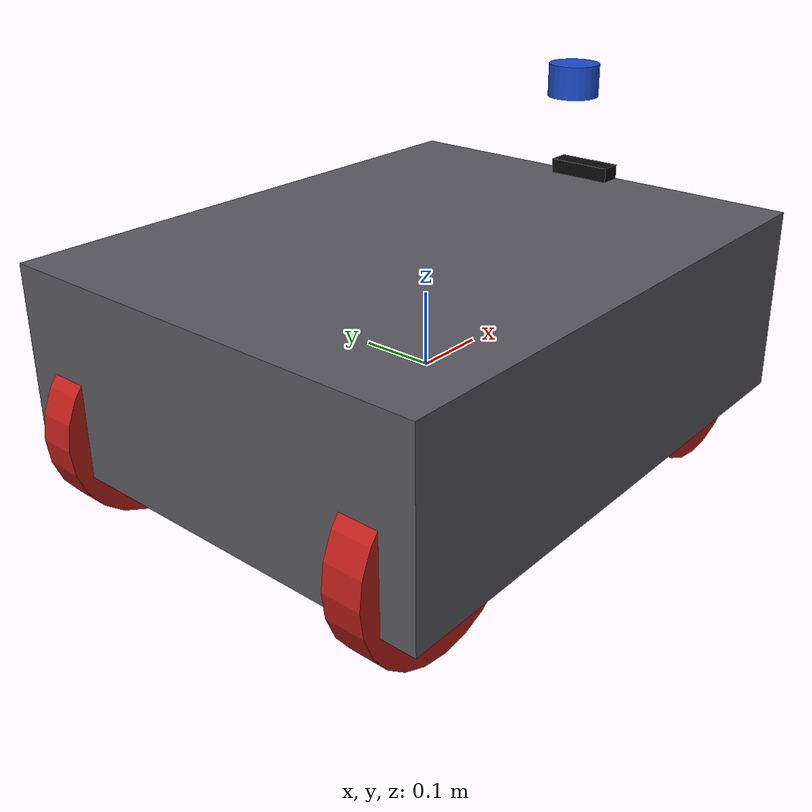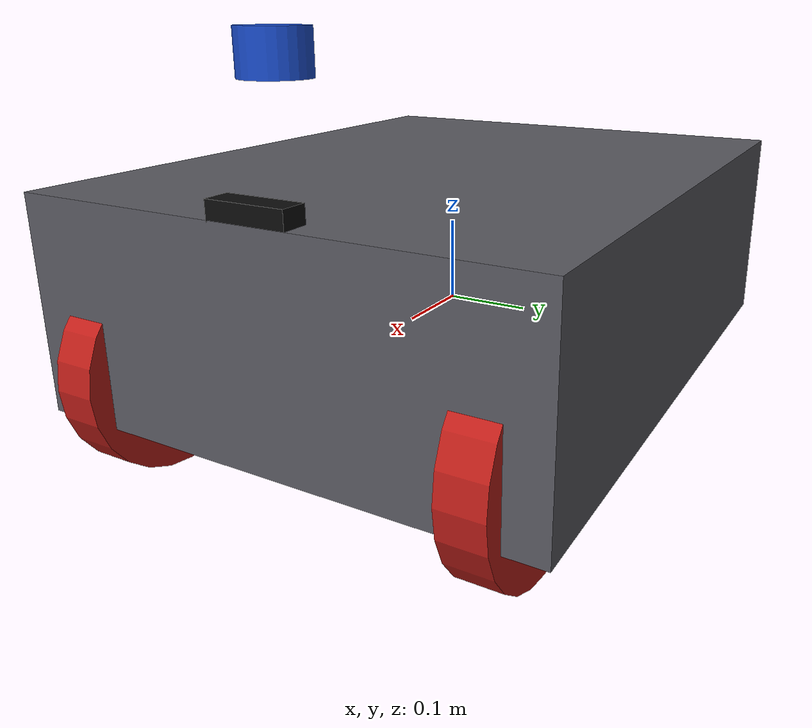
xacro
<?xml version="1.0"?>
<!--
  URDF-модель робота-курьера НТЦ АО «АВТОВАЗ».
  Шасси 4WIS/4WID: 4 независимых поворотно-тяговых модуля.
  Система координат: base_link — в центре рамы на высоте осей колес.
-->
<robot name="rus_slam" xmlns:xacro="http://www.ros.org/wiki/xacro">

  <!-- Габариты и массы -->
  <xacro:property name="body_length" value="0.75"/>
  <xacro:property name="body_width"  value="0.60"/>
  <xacro:property name="body_height" value="0.25"/>
  <xacro:property name="wheelbase"   value="0.55"/>
  <xacro:property name="track"       value="0.46"/>
  <xacro:property name="wheel_radius" value="0.127"/>
  <xacro:property name="wheel_width"  value="0.05"/>

  <!-- ============================== корпус ============================== -->
  <link name="base_link">
    <visual>
      <origin xyz="0 0 0.05" rpy="0 0 0"/>
      <geometry>
        <box size="${body_length} ${body_width} ${body_height}"/>
      </geometry>
      <material name="frame_grey">
        <color rgba="0.35 0.35 0.38 1.0"/>
      </material>
    </visual>
    <collision>
      <origin xyz="0 0 0.05" rpy="0 0 0"/>
      <geometry>
        <box size="${body_length} ${body_width} ${body_height}"/>
      </geometry>
    </collision>
    <inertial>
      <origin xyz="0 0 0.05" rpy="0 0 0"/>
      <mass value="65.0"/>
      <inertia ixx="2.6" ixy="0" ixz="0" iyy="3.2" iyz="0" izz="4.6"/>
    </inertial>
  </link>

  <link name="base_footprint"/>
  <joint name="base_footprint_joint" type="fixed">
    <parent link="base_link"/>
    <child link="base_footprint"/>
    <origin xyz="0 0 ${-wheel_radius}" rpy="0 0 0"/>
  </joint>

  <!-- ==================== поворотно-тяговой модуль ===================== -->
  <!-- Макрос: рулевая рама (степень свободы вокруг Z) + колесо (вокруг Y) -->
  <xacro:macro name="swerve_module" params="prefix x y">
    <link name="module_${prefix}_steer">
      <visual>
        <geometry>
          <cylinder radius="0.045" length="0.12"/>
        </geometry>
        <material name="pod_dark">
          <color rgba="0.15 0.15 0.17 1.0"/>
        </material>
      </visual>
      <inertial>
        <mass value="3.5"/>
        <inertia ixx="0.02" ixy="0" ixz="0" iyy="0.02" iyz="0" izz="0.01"/>
      </inertial>
    </link>

    <joint name="steer_${prefix}" type="continuous">
      <parent link="base_link"/>
      <child link="module_${prefix}_steer"/>
      <origin xyz="${x} ${y} 0" rpy="0 0 0"/>
      <axis xyz="0 0 1"/>
    </joint>

    <link name="wheel_${prefix}">
      <visual>
        <origin xyz="0 0 0" rpy="${pi/2} 0 0"/>
        <geometry>
          <cylinder radius="${wheel_radius}" length="${wheel_width}"/>
        </geometry>
        <material name="tire_red">
          <color rgba="0.75 0.12 0.10 1.0"/>
        </material>
      </visual>
      <collision>
        <origin xyz="0 0 0" rpy="${pi/2} 0 0"/>
        <geometry>
          <cylinder radius="${wheel_radius}" length="${wheel_width}"/>
        </geometry>
      </collision>
      <inertial>
        <mass value="3.0"/>
        <inertia ixx="0.012" ixy="0" ixz="0" iyy="0.024" iyz="0" izz="0.012"/>
      </inertial>
    </link>

    <joint name="wheel_${prefix}" type="continuous">
      <parent link="module_${prefix}_steer"/>
      <child link="wheel_${prefix}"/>
      <origin xyz="0 0 ${-0.03}" rpy="0 0 0"/>
      <axis xyz="0 1 0"/>
    </joint>
  </xacro:macro>

  <xacro:swerve_module prefix="fl" x="${ wheelbase/2}" y="${ track/2}"/>
  <xacro:swerve_module prefix="fr" x="${ wheelbase/2}" y="${-track/2}"/>
  <xacro:swerve_module prefix="rl" x="${-wheelbase/2}" y="${ track/2}"/>
  <xacro:swerve_module prefix="rr" x="${-wheelbase/2}" y="${-track/2}"/>

  <!-- ============================== сенсоры ============================= -->
  <!-- Лидар ЛДС-01: на верхней палубе, спереди по центру (x = 0.32 м от center) -->
  <link name="lidar_link">
    <visual>
      <geometry>
        <cylinder radius="0.035" length="0.045"/>
      </geometry>
      <material name="lidar_blue">
        <color rgba="0.1 0.3 0.8 1.0"/>
      </material>
    </visual>
    <inertial>
      <mass value="0.15"/>
      <inertia ixx="0.0001" ixy="0" ixz="0" iyy="0.0001" iyz="0" izz="0.0001"/>
    </inertial>
  </link>
  <joint name="lidar_joint" type="fixed">
    <parent link="base_link"/>
    <child link="lidar_link"/>
    <origin xyz="0.32 0 0.32" rpy="0 0 0"/>
  </joint>

  <!-- Камера машинного зрения -->
  <link name="camera_link">
    <visual>
      <geometry>
        <box size="0.03 0.09 0.03"/>
      </geometry>
      <material name="cam_black">
        <color rgba="0.05 0.05 0.05 1.0"/>
      </material>
    </visual>
    <inertial>
      <mass value="0.08"/>
      <inertia ixx="0.00005" ixy="0" ixz="0" iyy="0.00005" iyz="0" izz="0.00005"/>
    </inertial>
  </link>
  <joint name="camera_joint" type="fixed">
    <parent link="base_link"/>
    <child link="camera_link"/>
    <origin xyz="0.36 0 0.18" rpy="0 0 0"/>
  </joint>

</robot>
